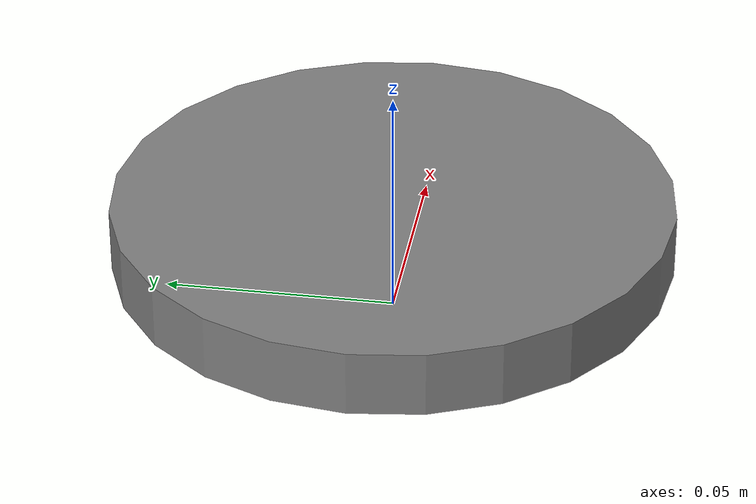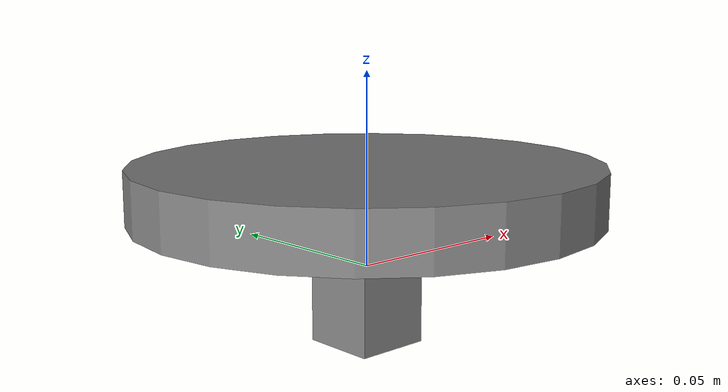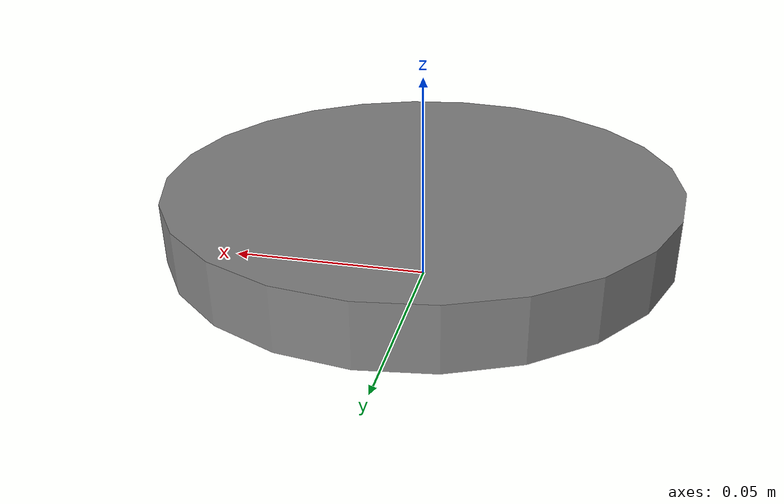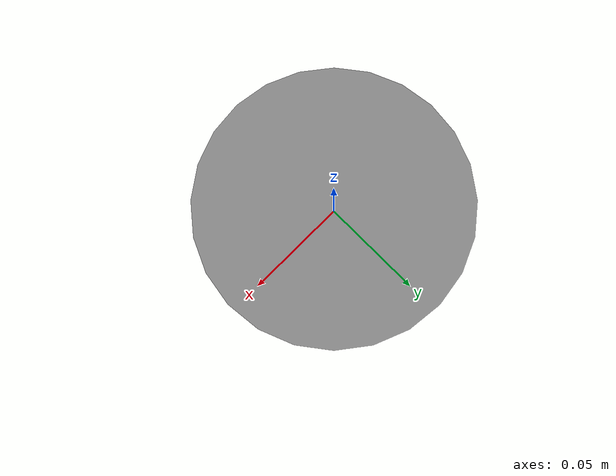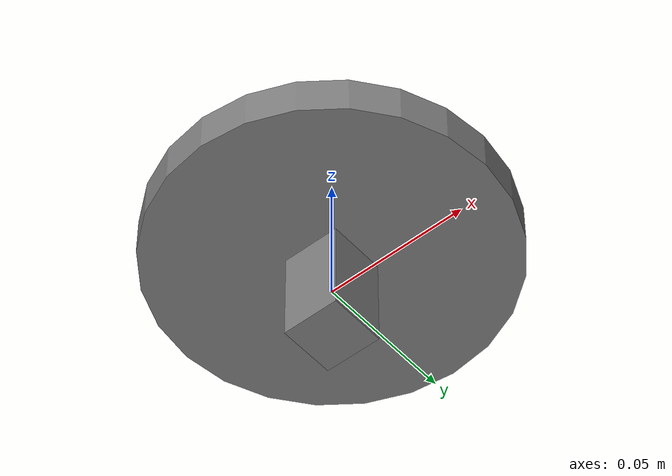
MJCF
<mujoco model="plate">
  <asset>
    <texture file="../textures/ceramic.png" type="cube" name="ceramic-met"/>
    <material name="sceramic" reflectance="0.5" shininess="1.0" specular="1.0" texrepeat="1 1" texture="ceramic-met" texuniform="true"/>
  </asset>
  <worldbody>
    <body>

      <body name="object" pos="0 0 0">
        <geom pos="0 0 0" size="0.01 0.01 0.02" type="box" group="0" friction="1 0.005 0.0001" condim="4" solimp="0.99 0.99 0.01" solref="0.001 1"/>
        <geom pos="0 0 0" material="sceramic" size="0.01 0.01 0.02" type="box" conaffinity="0" contype="0" group="0" mass="0.001" condim="4" solimp="0.99 0.99 0.01" solref="0.001 1"/>
        <geom pos="0 0 0.02" size="0.06 0.007" type="cylinder" group="0" friction="1 1 1" condim="4" solimp="0.99 0.99 0.01" solref="0.001 1"/>
        <geom pos="0 0 0.02" material="sceramic" size="0.06 0.007" type="cylinder" conaffinity="0" contype="0" group="0" mass="0.001" condim="4" solimp="0.99 0.99 0.01" solref="0.001 1"/>
      </body>

      <site rgba="0 0 0 0" size="0.001" pos="0.0 0.0 -0.02" name="bottom_site"/>
      <site rgba="0 0 0 0" size="0.001" pos="0.0 0.0 0.034" name="top_site"/>
      <site rgba="0 0 0 0" size="0.001" pos="0.06 0 0" name="horizontal_radius_site"/>
    </body>
  </worldbody>
</mujoco>
